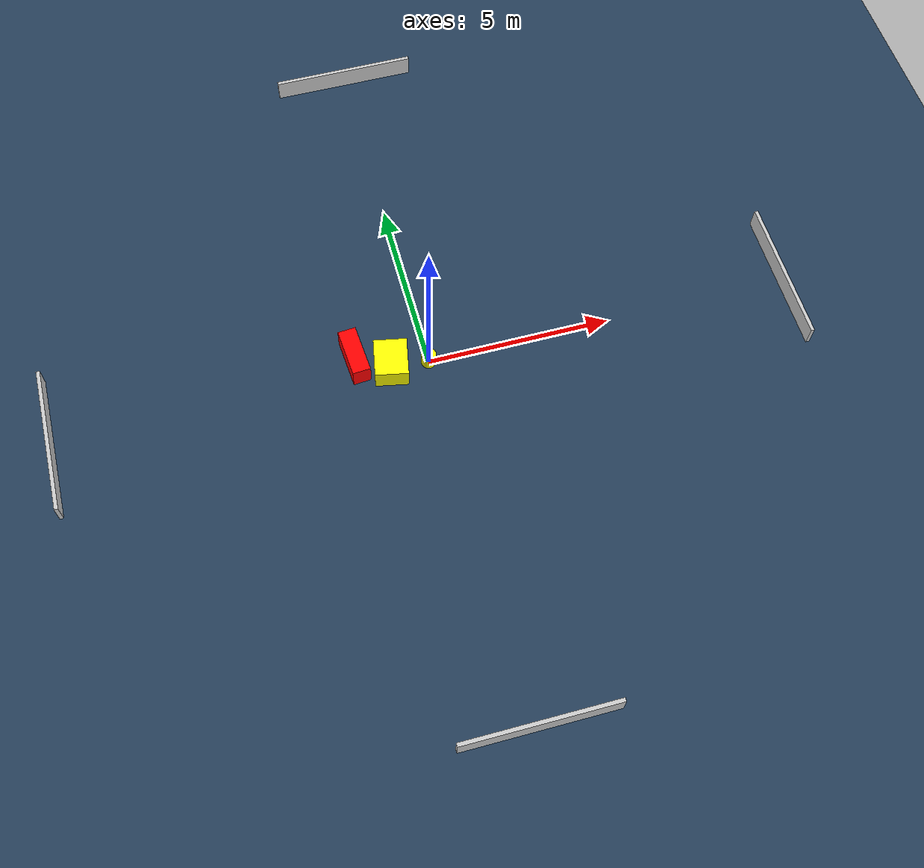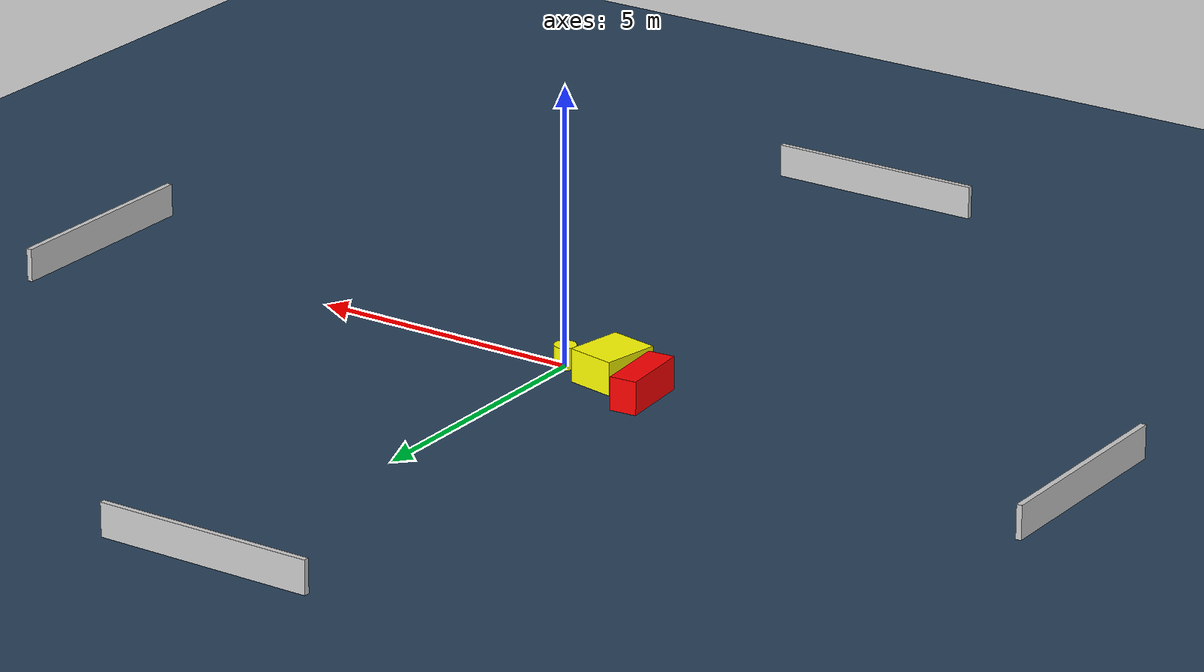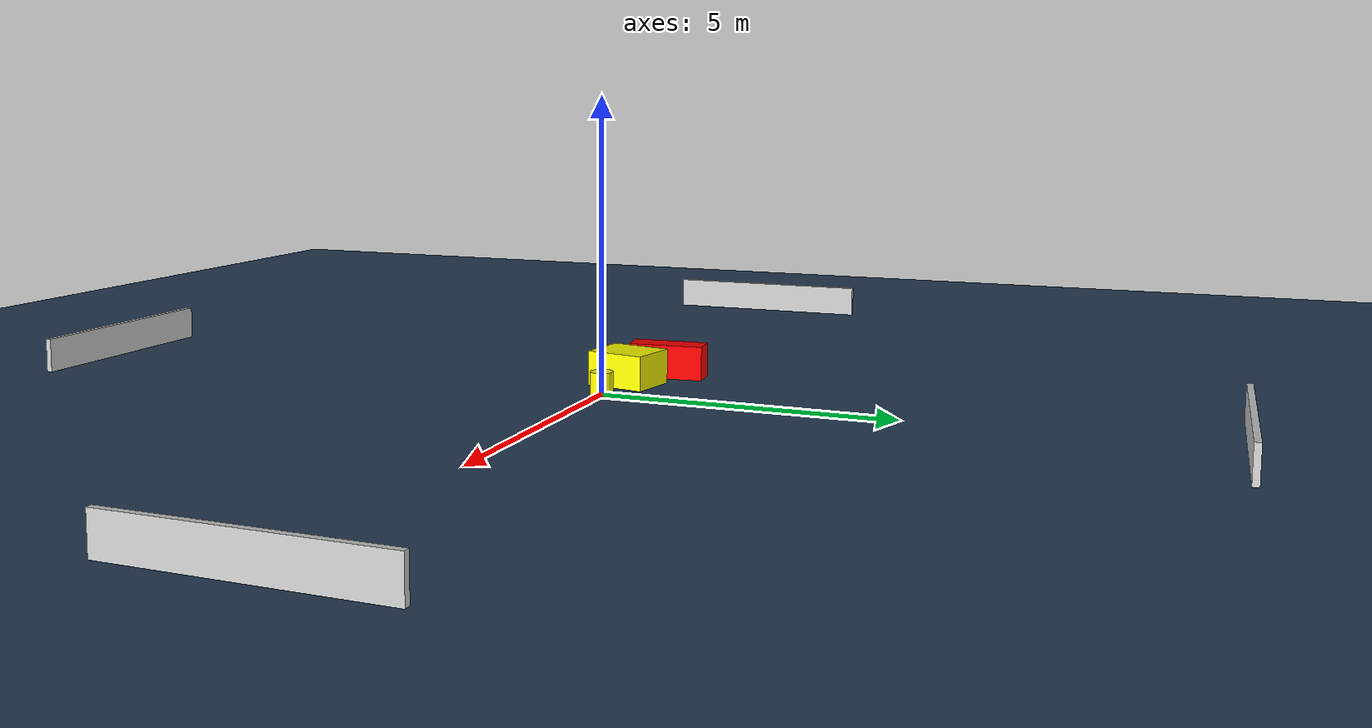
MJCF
<?xml version="1.0" ?>
<mujoco model="generated_environment">
  <option timestep="0.01" integrator="RK4" cone="elliptic"/>
  <default>
    <geom density="1"/>
  </default>
  <asset>
    <texture builtin="gradient" height="3072" name="skybox" rgb1="0.3 0.5 0.7" rgb2="0 0 0" type="skybox" width="512"/>
    <texture builtin="checker" height="300" name="groundplane" rgb1="0.2 0.3 0.4" rgb2="0.1 0.2 0.3" type="2d" width="300"/>
    <material name="groundplane" reflectance="0.2" texrepeat="5 5" texture="groundplane"/>
  </asset>
  <worldbody>
    <light dir="0 0 -1" directional="true" pos="0 0 1.5"/>
    <geom condim="3" friction="0.5 0.005 0.001" material="groundplane" name="floor" pos="0 0 0" size="0 0 0.05" type="plane"/>
    <body name="walls">
      <geom name="wall_1" condim="4" pos="-10.0 0.0 0.3" rgba="0.800000011920929 0.800000011920929 0.800000011920929 1.0" size="0.05 2.0 0.3" type="box"/>
      <geom name="wall_2" condim="4" pos="10.0 0.0 0.3" rgba="0.800000011920929 0.800000011920929 0.800000011920929 1.0" size="0.05 2.0 0.3" type="box"/>
      <geom name="wall_3" condim="4" pos="0.0 -10.0 0.3" rgba="0.800000011920929 0.800000011920929 0.800000011920929 1.0" size="2.0 0.05 0.3" type="box"/>
      <geom name="wall_4" condim="4" pos="0.0 10.0 0.3" rgba="0.800000011920929 0.800000011920929 0.800000011920929 1.0" size="2.0 0.05 0.3" type="box"/>
    </body>
    <body name="robot">
      <joint name="joint_x" type="slide" pos="0 0 0" axis="1 0 0"/>
      <joint name="joint_y" type="slide" pos="0 0 0" axis="0 1 0"/>
      <geom name="robot" type="cylinder" pos="0.0 0.0 0.2" size="0.2 0.2 0.0" mass="5.0" friction="1.0 0.005 0.0001" condim="4" rgba="1.0 1.0 0.0 1.0"/>
    </body>
    <body name="obstacle_1_movable">
      <geom name="obstacle_1_movable" condim="4" pos="-1.0062514458343086 0.0800422733731064 0.3" euler="0 0 169.12016201190545" friction="0.0 0.005 0.001" rgba="1.0 1.0 0.0 1.0" size="0.44494049822968756 0.5277011884411192 0.3" type="box" mass="0.1"/>
      <joint type="free"/>
    </body>
    <body name="obstacle_2_static">
      <geom name="obstacle_2_static" condim="4" pos="-1.8966661690365672 0.5089135016625471 0.3" euler="0 0 4.498690967017294" friction="0.0 0.005 0.001" rgba="1.0 0.0 0.0 1.0" size="0.24333829491095382 0.6601690636738735 0.3" type="box"/>
    </body>
  </worldbody>
  <actuator>
    <motor name="actuator_x" joint="joint_x" gear="1" ctrlrange="-1 1"/>
    <motor name="actuator_y" joint="joint_y" gear="1" ctrlrange="-1 1"/>
  </actuator>
</mujoco>
